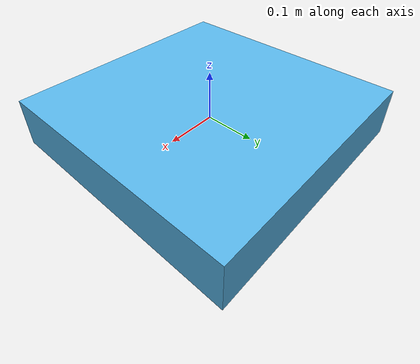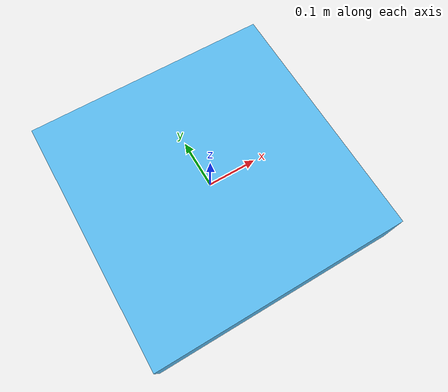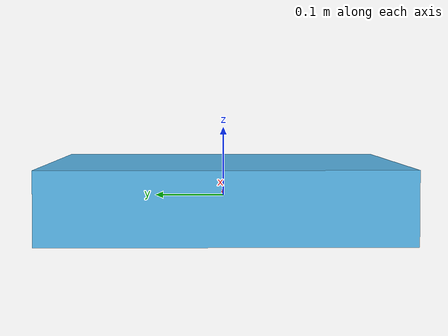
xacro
<?xml version="1.0"?>

<robot name="stool">

<!-- dummy_link -->
  <link name="dummy_link">
    <inertial>
      <origin xyz="0 0 0" />
      <mass value="5.0" />
      <inertia ixx="0.0" ixy="0.0" ixz="0.0" iyy="0.0" iyz="0.0" izz="0.0" />
    </inertial>
    <visual>
       <origin xyz="0 0 0" />
       <geometry>
         <box size="0.00 0.00 0.00" />
       </geometry>
    </visual>
    <collision>
      <origin xyz="0 0 0" />
        <geometry>
          <box size="0.00 0.00 0.00" />
        </geometry>
     </collision>
  </link>

  <link name="base">
    <inertial>
      <origin xyz="0 0 0" />
      <mass value="0.04" />
      <inertia ixx="0.0" ixy="0.0" ixz="0.0" iyy="0.0" iyz="0.0" izz="0.0" />
     </inertial>

     <visual>
       <origin xyz="0 0.0 0"/>
       <geometry>
         <box size="0.5 0.5 0.1" />
       </geometry>
     </visual>

     <collision>
       <origin xyz="0 0. 0"/>
       <geometry>
         <box size="0.5 0.5 0.1" />
       </geometry>
     </collision>
  </link>

  <joint name="joint_zero" type="fixed">
    <origin xyz="0 0 0" rpy="0 0 0" />
    <parent link="dummy_link" />
    <child link="base" />
  </joint>

  <gazebo reference="my_box">
    <material>Gazebo/Red</material>
  </gazebo>
</robot>
